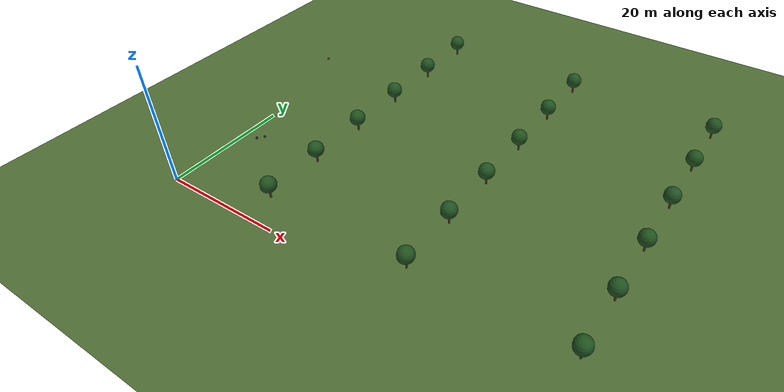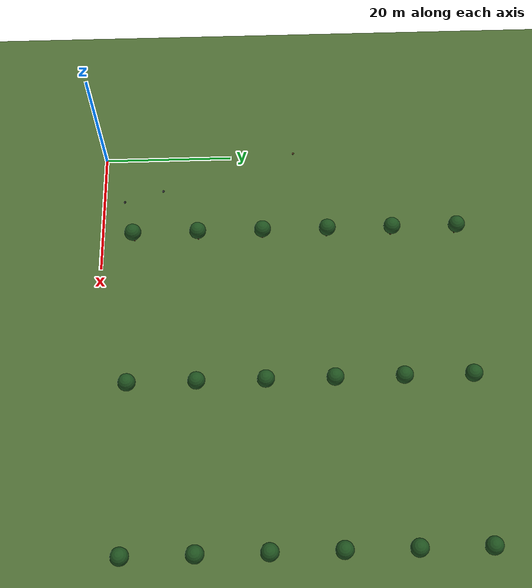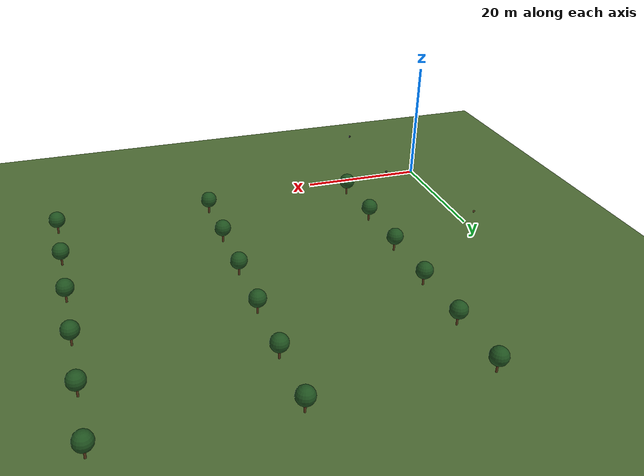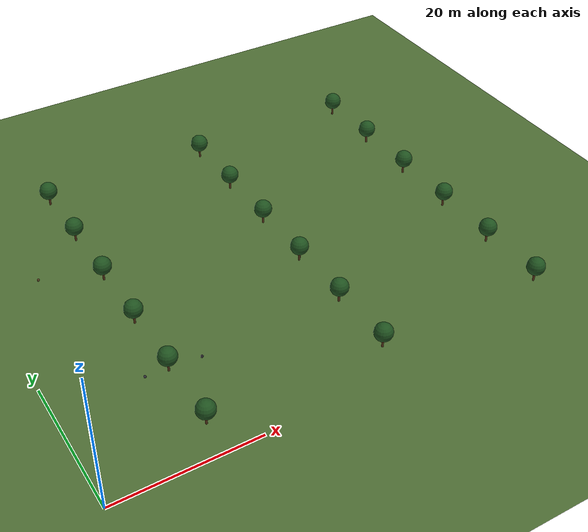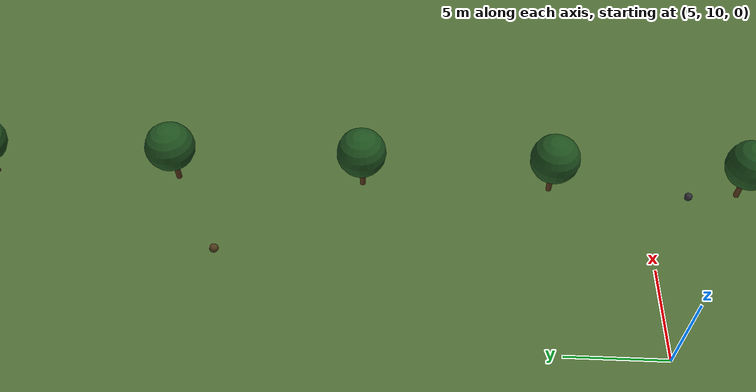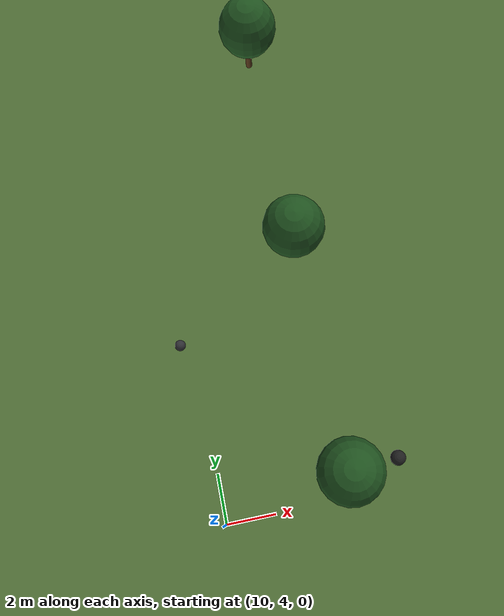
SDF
<sdf version="1.9">
 <world name="farmguard_field">
  <physics name="1ms" type="ignore">
   <max_step_size>0.001</max_step_size>
   <real_time_factor>1.0</real_time_factor>
  </physics>
  <plugin filename="gz-sim-physics-system" name="gz::sim::systems::Physics"/>
  <plugin filename="gz-sim-sensors-system" name="gz::sim::systems::Sensors">
   <render_engine>ogre2</render_engine>
  </plugin>
  <plugin filename="gz-sim-user-commands-system" name="gz::sim::systems::UserCommands"/>
  <plugin filename="gz-sim-scene-broadcaster-system" name="gz::sim::systems::SceneBroadcaster"/>
  <plugin filename="gz-sim-imu-system" name="gz::sim::systems::Imu"/>
  <plugin filename="gz-sim-navsat-system" name="gz::sim::systems::NavSat"/>
  <scene><ambient>0.9 0.9 0.9</ambient><background>0.7 0.8 0.9</background></scene>
  <spherical_coordinates>
   <latitude_deg>-35.363262</latitude_deg>
   <longitude_deg>149.165237</longitude_deg>
   <elevation>584</elevation>
   <heading_deg>0</heading_deg>
   <surface_model>EARTH_WGS84</surface_model>
  </spherical_coordinates>
  <light type="directional" name="sun">
   <cast_shadows>false</cast_shadows>
   <pose>0 0 10 0 0 0</pose>
   <diffuse>0.8 0.8 0.8 1</diffuse>
   <specular>0.8 0.8 0.8 1</specular>
   <attenuation>
    <range>1000</range>
    <constant>0.9</constant>
    <linear>0.01</linear>
    <quadratic>0.001</quadratic>
   </attenuation>
   <direction>-0.5 0.1 -0.9</direction>
  </light>
  <model name="field_ground">
   <static>true</static>
   <pose>37.5 30.0 0 0 0 0</pose>
   <link name="link">
    <collision name="collision">
     <geometry><plane><normal>0 0 1</normal><size>125.00 110.00</size></plane></geometry>
    </collision>
    <visual name="visual">
     <geometry><plane><normal>0 0 1</normal><size>125.00 110.00</size></plane></geometry>
     <material>
      <ambient>0.30 0.42 0.20 1</ambient>
      <diffuse>0.30 0.42 0.20 1</diffuse>
      <specular>0.05 0.05 0.05 1</specular>
     </material>
     <plugin filename="gz-sim-thermal-system" name="gz::sim::systems::Thermal">
      <temperature>282.0</temperature>
     </plugin>
    </visual>
   </link>
  </model>
  <model name="tree_row0_0">
   <static>true</static>
   <pose>15.0 5.0 0 0 0 0</pose>
   <link name="trunk">
    <pose>0 0 0.750 0 0 0</pose>
    <collision name="trunk_collision">
     <geometry><cylinder><radius>0.15</radius><length>1.5</length></cylinder></geometry>
    </collision>
    <visual name="trunk_visual">
     <geometry><cylinder><radius>0.15</radius><length>1.5</length></cylinder></geometry>
     <material><ambient>0.35 0.22 0.10 1</ambient><diffuse>0.35 0.22 0.10 1</diffuse></material>
     <plugin filename="gz-sim-thermal-system" name="gz::sim::systems::Thermal">
      <temperature>291.0</temperature>
     </plugin>
    </visual>
   </link>
   <link name="canopy">
    <pose>0 0 2.500 0 0 0</pose>
    <collision name="canopy_collision"><geometry><sphere><radius>1.3</radius></sphere></geometry></collision>
    <visual name="canopy_visual">
     <geometry><sphere><radius>1.3</radius></sphere></geometry>
     <material><ambient>0.12 0.32 0.12 1</ambient><diffuse>0.12 0.32 0.12 1</diffuse></material>
     <plugin filename="gz-sim-thermal-system" name="gz::sim::systems::Thermal">
      <temperature>321.0</temperature>
     </plugin>
    </visual>
   </link>
  </model>
  <model name="tree_row0_1">
   <static>true</static>
   <pose>15.0 15.0 0 0 0 0</pose>
   <link name="trunk">
    <pose>0 0 0.750 0 0 0</pose>
    <collision name="trunk_collision">
     <geometry><cylinder><radius>0.15</radius><length>1.5</length></cylinder></geometry>
    </collision>
    <visual name="trunk_visual">
     <geometry><cylinder><radius>0.15</radius><length>1.5</length></cylinder></geometry>
     <material><ambient>0.35 0.22 0.10 1</ambient><diffuse>0.35 0.22 0.10 1</diffuse></material>
     <plugin filename="gz-sim-thermal-system" name="gz::sim::systems::Thermal">
      <temperature>291.0</temperature>
     </plugin>
    </visual>
   </link>
   <link name="canopy">
    <pose>0 0 2.500 0 0 0</pose>
    <collision name="canopy_collision"><geometry><sphere><radius>1.3</radius></sphere></geometry></collision>
    <visual name="canopy_visual">
     <geometry><sphere><radius>1.3</radius></sphere></geometry>
     <material><ambient>0.12 0.32 0.12 1</ambient><diffuse>0.12 0.32 0.12 1</diffuse></material>
     <plugin filename="gz-sim-thermal-system" name="gz::sim::systems::Thermal">
      <temperature>321.0</temperature>
     </plugin>
    </visual>
   </link>
  </model>
  <model name="tree_row0_2">
   <static>true</static>
   <pose>15.0 25.0 0 0 0 0</pose>
   <link name="trunk">
    <pose>0 0 0.750 0 0 0</pose>
    <collision name="trunk_collision">
     <geometry><cylinder><radius>0.15</radius><length>1.5</length></cylinder></geometry>
    </collision>
    <visual name="trunk_visual">
     <geometry><cylinder><radius>0.15</radius><length>1.5</length></cylinder></geometry>
     <material><ambient>0.35 0.22 0.10 1</ambient><diffuse>0.35 0.22 0.10 1</diffuse></material>
     <plugin filename="gz-sim-thermal-system" name="gz::sim::systems::Thermal">
      <temperature>291.0</temperature>
     </plugin>
    </visual>
   </link>
   <link name="canopy">
    <pose>0 0 2.500 0 0 0</pose>
    <collision name="canopy_collision"><geometry><sphere><radius>1.3</radius></sphere></geometry></collision>
    <visual name="canopy_visual">
     <geometry><sphere><radius>1.3</radius></sphere></geometry>
     <material><ambient>0.12 0.32 0.12 1</ambient><diffuse>0.12 0.32 0.12 1</diffuse></material>
     <plugin filename="gz-sim-thermal-system" name="gz::sim::systems::Thermal">
      <temperature>321.0</temperature>
     </plugin>
    </visual>
   </link>
  </model>
  <model name="tree_row0_3">
   <static>true</static>
   <pose>15.0 35.0 0 0 0 0</pose>
   <link name="trunk">
    <pose>0 0 0.750 0 0 0</pose>
    <collision name="trunk_collision">
     <geometry><cylinder><radius>0.15</radius><length>1.5</length></cylinder></geometry>
    </collision>
    <visual name="trunk_visual">
     <geometry><cylinder><radius>0.15</radius><length>1.5</length></cylinder></geometry>
     <material><ambient>0.35 0.22 0.10 1</ambient><diffuse>0.35 0.22 0.10 1</diffuse></material>
     <plugin filename="gz-sim-thermal-system" name="gz::sim::systems::Thermal">
      <temperature>291.0</temperature>
     </plugin>
    </visual>
   </link>
   <link name="canopy">
    <pose>0 0 2.500 0 0 0</pose>
    <collision name="canopy_collision"><geometry><sphere><radius>1.3</radius></sphere></geometry></collision>
    <visual name="canopy_visual">
     <geometry><sphere><radius>1.3</radius></sphere></geometry>
     <material><ambient>0.12 0.32 0.12 1</ambient><diffuse>0.12 0.32 0.12 1</diffuse></material>
     <plugin filename="gz-sim-thermal-system" name="gz::sim::systems::Thermal">
      <temperature>321.0</temperature>
     </plugin>
    </visual>
   </link>
  </model>
  <model name="tree_row0_4">
   <static>true</static>
   <pose>15.0 45.0 0 0 0 0</pose>
   <link name="trunk">
    <pose>0 0 0.750 0 0 0</pose>
    <collision name="trunk_collision">
     <geometry><cylinder><radius>0.15</radius><length>1.5</length></cylinder></geometry>
    </collision>
    <visual name="trunk_visual">
     <geometry><cylinder><radius>0.15</radius><length>1.5</length></cylinder></geometry>
     <material><ambient>0.35 0.22 0.10 1</ambient><diffuse>0.35 0.22 0.10 1</diffuse></material>
     <plugin filename="gz-sim-thermal-system" name="gz::sim::systems::Thermal">
      <temperature>291.0</temperature>
     </plugin>
    </visual>
   </link>
   <link name="canopy">
    <pose>0 0 2.500 0 0 0</pose>
    <collision name="canopy_collision"><geometry><sphere><radius>1.3</radius></sphere></geometry></collision>
    <visual name="canopy_visual">
     <geometry><sphere><radius>1.3</radius></sphere></geometry>
     <material><ambient>0.12 0.32 0.12 1</ambient><diffuse>0.12 0.32 0.12 1</diffuse></material>
     <plugin filename="gz-sim-thermal-system" name="gz::sim::systems::Thermal">
      <temperature>321.0</temperature>
     </plugin>
    </visual>
   </link>
  </model>
  <model name="tree_row0_5">
   <static>true</static>
   <pose>15.0 55.0 0 0 0 0</pose>
   <link name="trunk">
    <pose>0 0 0.750 0 0 0</pose>
    <collision name="trunk_collision">
     <geometry><cylinder><radius>0.15</radius><length>1.5</length></cylinder></geometry>
    </collision>
    <visual name="trunk_visual">
     <geometry><cylinder><radius>0.15</radius><length>1.5</length></cylinder></geometry>
     <material><ambient>0.35 0.22 0.10 1</ambient><diffuse>0.35 0.22 0.10 1</diffuse></material>
     <plugin filename="gz-sim-thermal-system" name="gz::sim::systems::Thermal">
      <temperature>291.0</temperature>
     </plugin>
    </visual>
   </link>
   <link name="canopy">
    <pose>0 0 2.500 0 0 0</pose>
    <collision name="canopy_collision"><geometry><sphere><radius>1.3</radius></sphere></geometry></collision>
    <visual name="canopy_visual">
     <geometry><sphere><radius>1.3</radius></sphere></geometry>
     <material><ambient>0.12 0.32 0.12 1</ambient><diffuse>0.12 0.32 0.12 1</diffuse></material>
     <plugin filename="gz-sim-thermal-system" name="gz::sim::systems::Thermal">
      <temperature>321.0</temperature>
     </plugin>
    </visual>
   </link>
  </model>
  <model name="tree_row1_0">
   <static>true</static>
   <pose>40.0 5.0 0 0 0 0</pose>
   <link name="trunk">
    <pose>0 0 0.750 0 0 0</pose>
    <collision name="trunk_collision">
     <geometry><cylinder><radius>0.15</radius><length>1.5</length></cylinder></geometry>
    </collision>
    <visual name="trunk_visual">
     <geometry><cylinder><radius>0.15</radius><length>1.5</length></cylinder></geometry>
     <material><ambient>0.35 0.22 0.10 1</ambient><diffuse>0.35 0.22 0.10 1</diffuse></material>
     <plugin filename="gz-sim-thermal-system" name="gz::sim::systems::Thermal">
      <temperature>291.0</temperature>
     </plugin>
    </visual>
   </link>
   <link name="canopy">
    <pose>0 0 2.500 0 0 0</pose>
    <collision name="canopy_collision"><geometry><sphere><radius>1.3</radius></sphere></geometry></collision>
    <visual name="canopy_visual">
     <geometry><sphere><radius>1.3</radius></sphere></geometry>
     <material><ambient>0.12 0.32 0.12 1</ambient><diffuse>0.12 0.32 0.12 1</diffuse></material>
     <plugin filename="gz-sim-thermal-system" name="gz::sim::systems::Thermal">
      <temperature>321.0</temperature>
     </plugin>
    </visual>
   </link>
  </model>
  <model name="tree_row1_1">
   <static>true</static>
   <pose>40.0 15.0 0 0 0 0</pose>
   <link name="trunk">
    <pose>0 0 0.750 0 0 0</pose>
    <collision name="trunk_collision">
     <geometry><cylinder><radius>0.15</radius><length>1.5</length></cylinder></geometry>
    </collision>
    <visual name="trunk_visual">
     <geometry><cylinder><radius>0.15</radius><length>1.5</length></cylinder></geometry>
     <material><ambient>0.35 0.22 0.10 1</ambient><diffuse>0.35 0.22 0.10 1</diffuse></material>
     <plugin filename="gz-sim-thermal-system" name="gz::sim::systems::Thermal">
      <temperature>291.0</temperature>
     </plugin>
    </visual>
   </link>
   <link name="canopy">
    <pose>0 0 2.500 0 0 0</pose>
    <collision name="canopy_collision"><geometry><sphere><radius>1.3</radius></sphere></geometry></collision>
    <visual name="canopy_visual">
     <geometry><sphere><radius>1.3</radius></sphere></geometry>
     <material><ambient>0.12 0.32 0.12 1</ambient><diffuse>0.12 0.32 0.12 1</diffuse></material>
     <plugin filename="gz-sim-thermal-system" name="gz::sim::systems::Thermal">
      <temperature>321.0</temperature>
     </plugin>
    </visual>
   </link>
  </model>
  <model name="tree_row1_2">
   <static>true</static>
   <pose>40.0 25.0 0 0 0 0</pose>
   <link name="trunk">
    <pose>0 0 0.750 0 0 0</pose>
    <collision name="trunk_collision">
     <geometry><cylinder><radius>0.15</radius><length>1.5</length></cylinder></geometry>
    </collision>
    <visual name="trunk_visual">
     <geometry><cylinder><radius>0.15</radius><length>1.5</length></cylinder></geometry>
     <material><ambient>0.35 0.22 0.10 1</ambient><diffuse>0.35 0.22 0.10 1</diffuse></material>
     <plugin filename="gz-sim-thermal-system" name="gz::sim::systems::Thermal">
      <temperature>291.0</temperature>
     </plugin>
    </visual>
   </link>
   <link name="canopy">
    <pose>0 0 2.500 0 0 0</pose>
    <collision name="canopy_collision"><geometry><sphere><radius>1.3</radius></sphere></geometry></collision>
    <visual name="canopy_visual">
     <geometry><sphere><radius>1.3</radius></sphere></geometry>
     <material><ambient>0.12 0.32 0.12 1</ambient><diffuse>0.12 0.32 0.12 1</diffuse></material>
     <plugin filename="gz-sim-thermal-system" name="gz::sim::systems::Thermal">
      <temperature>321.0</temperature>
     </plugin>
    </visual>
   </link>
  </model>
  <model name="tree_row1_3">
   <static>true</static>
   <pose>40.0 35.0 0 0 0 0</pose>
   <link name="trunk">
    <pose>0 0 0.750 0 0 0</pose>
    <collision name="trunk_collision">
     <geometry><cylinder><radius>0.15</radius><length>1.5</length></cylinder></geometry>
    </collision>
    <visual name="trunk_visual">
     <geometry><cylinder><radius>0.15</radius><length>1.5</length></cylinder></geometry>
     <material><ambient>0.35 0.22 0.10 1</ambient><diffuse>0.35 0.22 0.10 1</diffuse></material>
     <plugin filename="gz-sim-thermal-system" name="gz::sim::systems::Thermal">
      <temperature>291.0</temperature>
     </plugin>
    </visual>
   </link>
   <link name="canopy">
    <pose>0 0 2.500 0 0 0</pose>
    <collision name="canopy_collision"><geometry><sphere><radius>1.3</radius></sphere></geometry></collision>
    <visual name="canopy_visual">
     <geometry><sphere><radius>1.3</radius></sphere></geometry>
     <material><ambient>0.12 0.32 0.12 1</ambient><diffuse>0.12 0.32 0.12 1</diffuse></material>
     <plugin filename="gz-sim-thermal-system" name="gz::sim::systems::Thermal">
      <temperature>321.0</temperature>
     </plugin>
    </visual>
   </link>
  </model>
  <model name="tree_row1_4">
   <static>true</static>
   <pose>40.0 45.0 0 0 0 0</pose>
   <link name="trunk">
    <pose>0 0 0.750 0 0 0</pose>
    <collision name="trunk_collision">
     <geometry><cylinder><radius>0.15</radius><length>1.5</length></cylinder></geometry>
    </collision>
    <visual name="trunk_visual">
     <geometry><cylinder><radius>0.15</radius><length>1.5</length></cylinder></geometry>
     <material><ambient>0.35 0.22 0.10 1</ambient><diffuse>0.35 0.22 0.10 1</diffuse></material>
     <plugin filename="gz-sim-thermal-system" name="gz::sim::systems::Thermal">
      <temperature>291.0</temperature>
     </plugin>
    </visual>
   </link>
   <link name="canopy">
    <pose>0 0 2.500 0 0 0</pose>
    <collision name="canopy_collision"><geometry><sphere><radius>1.3</radius></sphere></geometry></collision>
    <visual name="canopy_visual">
     <geometry><sphere><radius>1.3</radius></sphere></geometry>
     <material><ambient>0.12 0.32 0.12 1</ambient><diffuse>0.12 0.32 0.12 1</diffuse></material>
     <plugin filename="gz-sim-thermal-system" name="gz::sim::systems::Thermal">
      <temperature>321.0</temperature>
     </plugin>
    </visual>
   </link>
  </model>
  <model name="tree_row1_5">
   <static>true</static>
   <pose>40.0 55.0 0 0 0 0</pose>
   <link name="trunk">
    <pose>0 0 0.750 0 0 0</pose>
    <collision name="trunk_collision">
     <geometry><cylinder><radius>0.15</radius><length>1.5</length></cylinder></geometry>
    </collision>
    <visual name="trunk_visual">
     <geometry><cylinder><radius>0.15</radius><length>1.5</length></cylinder></geometry>
     <material><ambient>0.35 0.22 0.10 1</ambient><diffuse>0.35 0.22 0.10 1</diffuse></material>
     <plugin filename="gz-sim-thermal-system" name="gz::sim::systems::Thermal">
      <temperature>291.0</temperature>
     </plugin>
    </visual>
   </link>
   <link name="canopy">
    <pose>0 0 2.500 0 0 0</pose>
    <collision name="canopy_collision"><geometry><sphere><radius>1.3</radius></sphere></geometry></collision>
    <visual name="canopy_visual">
     <geometry><sphere><radius>1.3</radius></sphere></geometry>
     <material><ambient>0.12 0.32 0.12 1</ambient><diffuse>0.12 0.32 0.12 1</diffuse></material>
     <plugin filename="gz-sim-thermal-system" name="gz::sim::systems::Thermal">
      <temperature>321.0</temperature>
     </plugin>
    </visual>
   </link>
  </model>
  <model name="tree_row2_0">
   <static>true</static>
   <pose>65.0 5.0 0 0 0 0</pose>
   <link name="trunk">
    <pose>0 0 0.750 0 0 0</pose>
    <collision name="trunk_collision">
     <geometry><cylinder><radius>0.15</radius><length>1.5</length></cylinder></geometry>
    </collision>
    <visual name="trunk_visual">
     <geometry><cylinder><radius>0.15</radius><length>1.5</length></cylinder></geometry>
     <material><ambient>0.35 0.22 0.10 1</ambient><diffuse>0.35 0.22 0.10 1</diffuse></material>
     <plugin filename="gz-sim-thermal-system" name="gz::sim::systems::Thermal">
      <temperature>291.0</temperature>
     </plugin>
    </visual>
   </link>
   <link name="canopy">
    <pose>0 0 2.500 0 0 0</pose>
    <collision name="canopy_collision"><geometry><sphere><radius>1.3</radius></sphere></geometry></collision>
    <visual name="canopy_visual">
     <geometry><sphere><radius>1.3</radius></sphere></geometry>
     <material><ambient>0.12 0.32 0.12 1</ambient><diffuse>0.12 0.32 0.12 1</diffuse></material>
     <plugin filename="gz-sim-thermal-system" name="gz::sim::systems::Thermal">
      <temperature>321.0</temperature>
     </plugin>
    </visual>
   </link>
  </model>
  <model name="tree_row2_1">
   <static>true</static>
   <pose>65.0 15.0 0 0 0 0</pose>
   <link name="trunk">
    <pose>0 0 0.750 0 0 0</pose>
    <collision name="trunk_collision">
     <geometry><cylinder><radius>0.15</radius><length>1.5</length></cylinder></geometry>
    </collision>
    <visual name="trunk_visual">
     <geometry><cylinder><radius>0.15</radius><length>1.5</length></cylinder></geometry>
     <material><ambient>0.35 0.22 0.10 1</ambient><diffuse>0.35 0.22 0.10 1</diffuse></material>
     <plugin filename="gz-sim-thermal-system" name="gz::sim::systems::Thermal">
      <temperature>291.0</temperature>
     </plugin>
    </visual>
   </link>
   <link name="canopy">
    <pose>0 0 2.500 0 0 0</pose>
    <collision name="canopy_collision"><geometry><sphere><radius>1.3</radius></sphere></geometry></collision>
    <visual name="canopy_visual">
     <geometry><sphere><radius>1.3</radius></sphere></geometry>
     <material><ambient>0.12 0.32 0.12 1</ambient><diffuse>0.12 0.32 0.12 1</diffuse></material>
     <plugin filename="gz-sim-thermal-system" name="gz::sim::systems::Thermal">
      <temperature>321.0</temperature>
     </plugin>
    </visual>
   </link>
  </model>
  <model name="tree_row2_2">
   <static>true</static>
   <pose>65.0 25.0 0 0 0 0</pose>
   <link name="trunk">
    <pose>0 0 0.750 0 0 0</pose>
    <collision name="trunk_collision">
     <geometry><cylinder><radius>0.15</radius><length>1.5</length></cylinder></geometry>
    </collision>
    <visual name="trunk_visual">
     <geometry><cylinder><radius>0.15</radius><length>1.5</length></cylinder></geometry>
     <material><ambient>0.35 0.22 0.10 1</ambient><diffuse>0.35 0.22 0.10 1</diffuse></material>
     <plugin filename="gz-sim-thermal-system" name="gz::sim::systems::Thermal">
      <temperature>291.0</temperature>
     </plugin>
    </visual>
   </link>
   <link name="canopy">
    <pose>0 0 2.500 0 0 0</pose>
    <collision name="canopy_collision"><geometry><sphere><radius>1.3</radius></sphere></geometry></collision>
    <visual name="canopy_visual">
     <geometry><sphere><radius>1.3</radius></sphere></geometry>
     <material><ambient>0.12 0.32 0.12 1</ambient><diffuse>0.12 0.32 0.12 1</diffuse></material>
     <plugin filename="gz-sim-thermal-system" name="gz::sim::systems::Thermal">
      <temperature>321.0</temperature>
     </plugin>
    </visual>
   </link>
  </model>
  <model name="tree_row2_3">
   <static>true</static>
   <pose>65.0 35.0 0 0 0 0</pose>
   <link name="trunk">
    <pose>0 0 0.750 0 0 0</pose>
    <collision name="trunk_collision">
     <geometry><cylinder><radius>0.15</radius><length>1.5</length></cylinder></geometry>
    </collision>
    <visual name="trunk_visual">
     <geometry><cylinder><radius>0.15</radius><length>1.5</length></cylinder></geometry>
     <material><ambient>0.35 0.22 0.10 1</ambient><diffuse>0.35 0.22 0.10 1</diffuse></material>
     <plugin filename="gz-sim-thermal-system" name="gz::sim::systems::Thermal">
      <temperature>291.0</temperature>
     </plugin>
    </visual>
   </link>
   <link name="canopy">
    <pose>0 0 2.500 0 0 0</pose>
    <collision name="canopy_collision"><geometry><sphere><radius>1.3</radius></sphere></geometry></collision>
    <visual name="canopy_visual">
     <geometry><sphere><radius>1.3</radius></sphere></geometry>
     <material><ambient>0.12 0.32 0.12 1</ambient><diffuse>0.12 0.32 0.12 1</diffuse></material>
     <plugin filename="gz-sim-thermal-system" name="gz::sim::systems::Thermal">
      <temperature>321.0</temperature>
     </plugin>
    </visual>
   </link>
  </model>
  <model name="tree_row2_4">
   <static>true</static>
   <pose>65.0 45.0 0 0 0 0</pose>
   <link name="trunk">
    <pose>0 0 0.750 0 0 0</pose>
    <collision name="trunk_collision">
     <geometry><cylinder><radius>0.15</radius><length>1.5</length></cylinder></geometry>
    </collision>
    <visual name="trunk_visual">
     <geometry><cylinder><radius>0.15</radius><length>1.5</length></cylinder></geometry>
     <material><ambient>0.35 0.22 0.10 1</ambient><diffuse>0.35 0.22 0.10 1</diffuse></material>
     <plugin filename="gz-sim-thermal-system" name="gz::sim::systems::Thermal">
      <temperature>291.0</temperature>
     </plugin>
    </visual>
   </link>
   <link name="canopy">
    <pose>0 0 2.500 0 0 0</pose>
    <collision name="canopy_collision"><geometry><sphere><radius>1.3</radius></sphere></geometry></collision>
    <visual name="canopy_visual">
     <geometry><sphere><radius>1.3</radius></sphere></geometry>
     <material><ambient>0.12 0.32 0.12 1</ambient><diffuse>0.12 0.32 0.12 1</diffuse></material>
     <plugin filename="gz-sim-thermal-system" name="gz::sim::systems::Thermal">
      <temperature>321.0</temperature>
     </plugin>
    </visual>
   </link>
  </model>
  <model name="tree_row2_5">
   <static>true</static>
   <pose>65.0 55.0 0 0 0 0</pose>
   <link name="trunk">
    <pose>0 0 0.750 0 0 0</pose>
    <collision name="trunk_collision">
     <geometry><cylinder><radius>0.15</radius><length>1.5</length></cylinder></geometry>
    </collision>
    <visual name="trunk_visual">
     <geometry><cylinder><radius>0.15</radius><length>1.5</length></cylinder></geometry>
     <material><ambient>0.35 0.22 0.10 1</ambient><diffuse>0.35 0.22 0.10 1</diffuse></material>
     <plugin filename="gz-sim-thermal-system" name="gz::sim::systems::Thermal">
      <temperature>291.0</temperature>
     </plugin>
    </visual>
   </link>
   <link name="canopy">
    <pose>0 0 2.500 0 0 0</pose>
    <collision name="canopy_collision"><geometry><sphere><radius>1.3</radius></sphere></geometry></collision>
    <visual name="canopy_visual">
     <geometry><sphere><radius>1.3</radius></sphere></geometry>
     <material><ambient>0.12 0.32 0.12 1</ambient><diffuse>0.12 0.32 0.12 1</diffuse></material>
     <plugin filename="gz-sim-thermal-system" name="gz::sim::systems::Thermal">
      <temperature>321.0</temperature>
     </plugin>
    </visual>
   </link>
  </model>
  <model name="bird_0">
   <static>true</static>
   <pose>15.0 5.0 11.0 0 0 1.5708</pose>
   <link name="link">
    <visual name="visual">
     <geometry><sphere><radius>0.18</radius></sphere></geometry>
     <material><ambient>0.12 0.12 0.12 1.0</ambient><diffuse>0.12 0.12 0.12 1.0</diffuse></material>
     <plugin filename="gz-sim-thermal-system" name="gz::sim::systems::Thermal">
      <temperature>273.0</temperature>
     </plugin>
    </visual>
   </link>
  </model>
  <model name="bird_1">
   <static>true</static>
   <pose>5.0 30.0 8.0 0 0 0.0000</pose>
   <link name="link">
    <visual name="visual">
     <geometry><sphere><radius>0.18</radius></sphere></geometry>
     <material><ambient>0.3 0.22 0.1 1.0</ambient><diffuse>0.3 0.22 0.1 1.0</diffuse></material>
     <plugin filename="gz-sim-thermal-system" name="gz::sim::systems::Thermal">
      <temperature>273.0</temperature>
     </plugin>
    </visual>
   </link>
  </model>
  <model name="bird_2">
   <static>true</static>
   <pose>10.0 10.0 6.0 0 0 0.6283</pose>
   <link name="link">
    <visual name="visual">
     <geometry><sphere><radius>0.18</radius></sphere></geometry>
     <material><ambient>0.18 0.18 0.2 1.0</ambient><diffuse>0.18 0.18 0.2 1.0</diffuse></material>
     <plugin filename="gz-sim-thermal-system" name="gz::sim::systems::Thermal">
      <temperature>273.0</temperature>
     </plugin>
    </visual>
   </link>
  </model>
 </world>
</sdf>
